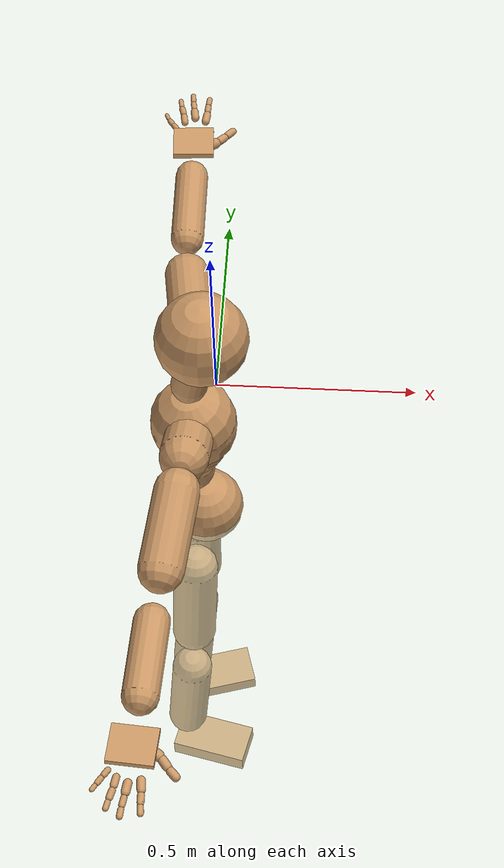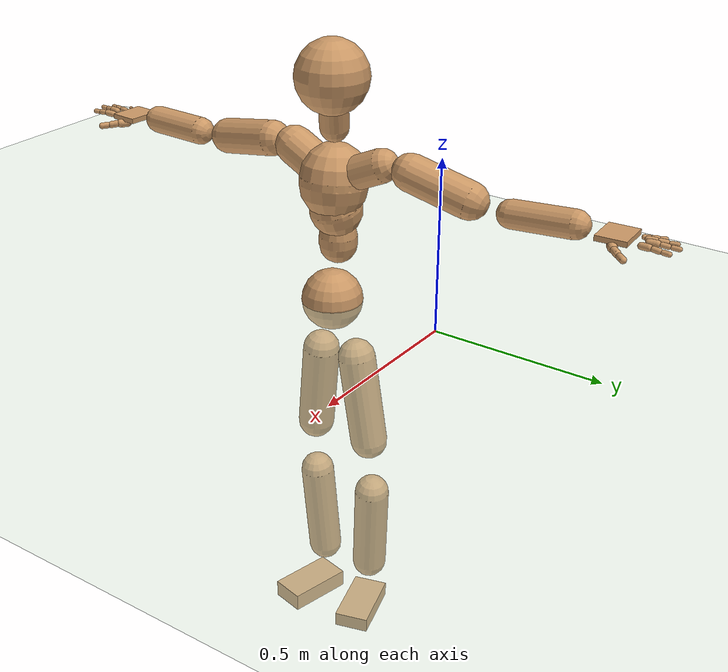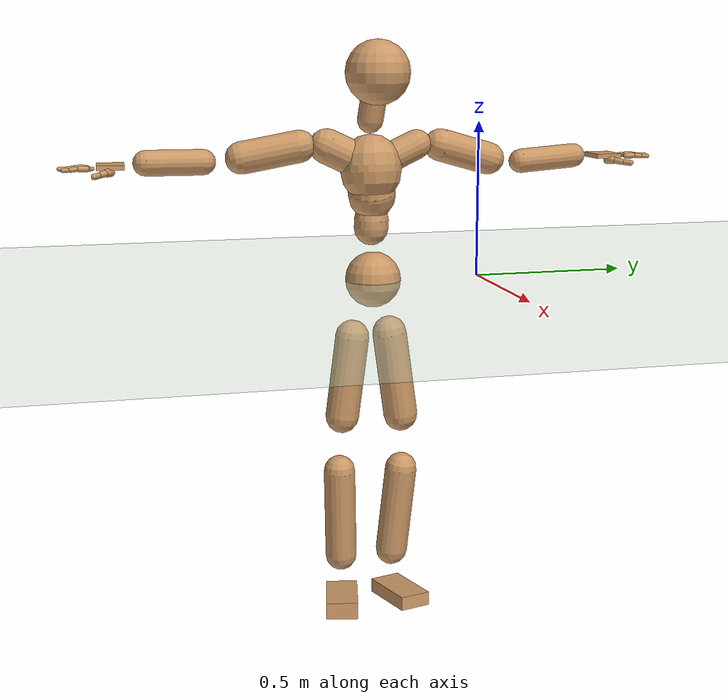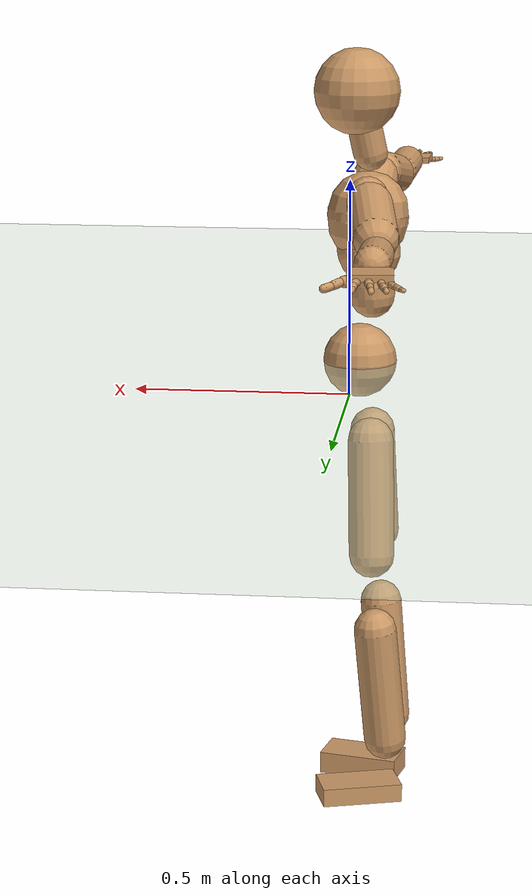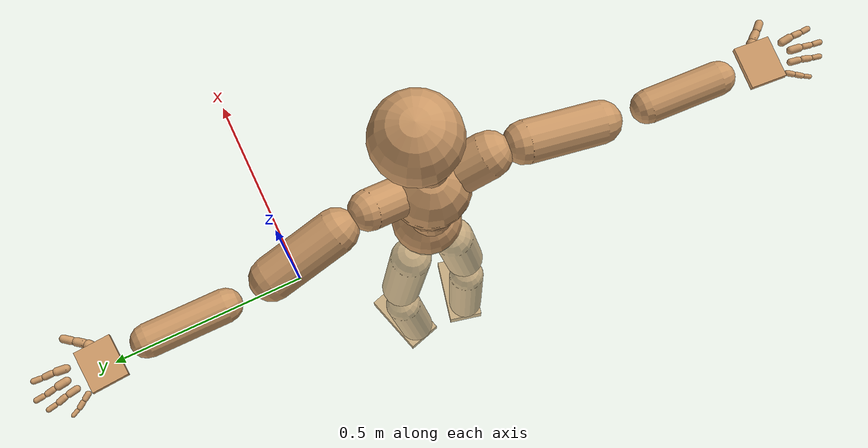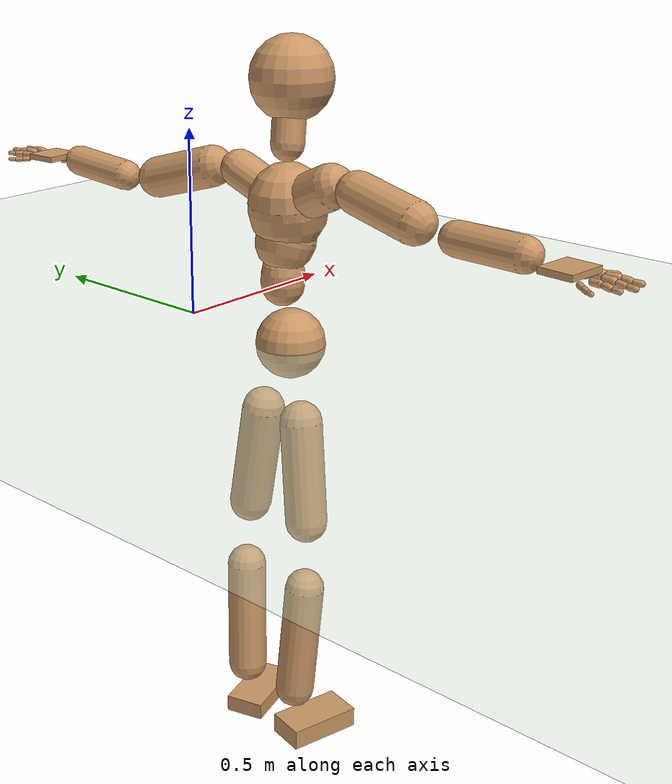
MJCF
<mujoco model="humanoid">
  <compiler coordinate="local" angle="radian"/>
  <default>
    <joint damping="0.0" armature="0.01" stiffness="0.0" limited="true"/>
    <geom conaffinity="1" condim="3" contype="7" margin="0.001" rgba="0.8 0.6 .4 1"/>
  </default>
  <asset>
    <texture type="skybox" builtin="gradient" rgb1=".4 .5 .6" rgb2="0 0 0" width="100" height="100"/>
    <texture builtin="flat" height="1278" mark="cross" markrgb="1 1 1" name="texgeom" random="0.01" rgb1="0.8 0.6 0.4" rgb2="0.8 0.6 0.4" type="cube" width="127"/>
    <texture builtin="checker" height="100" name="texplane" rgb1="0 0 0" rgb2="0.8 0.8 0.8" type="2d" width="100"/>
    <material name="MatPlane" reflectance="0.5" shininess="1" specular="1" texrepeat="60 60" texture="texplane"/>
    <material name="geom" texture="texgeom" texuniform="true"/>
  </asset>
  <worldbody>
    <light cutoff="100" diffuse="1 1 1" dir="-0 0 -1.3" directional="true" exponent="1" pos="0 0 1.3" specular=".1 .1 .1"/>
    <geom conaffinity="1" condim="3" name="floor" pos="0 0 0" rgba="0.8 0.9 0.8 1" size="100 100 .2" type="plane" material="MatPlane"/>
    <body name="Pelvis" pos="0.0006 -0.3533 0.0005">
      <freejoint name="Pelvis"/>
      <geom type="sphere" contype="1" conaffinity="1" density="500" size="0.0901" pos="0.0000 0.0000 0.0000" name="Pelvis"/>
      <body name="L_Hip" pos="-0.0297 0.0504 -0.0924">
        <joint name="L_Hip_x" type="hinge" pos="0 0 0" axis="1 0 0" stiffness="800" damping="80" armature="0.02" range="-180.0000 180.0000"/>
        <joint name="L_Hip_y" type="hinge" pos="0 0 0" axis="0 1 0" stiffness="800" damping="80" armature="0.02" range="-180.0000 180.0000"/>
        <joint name="L_Hip_z" type="hinge" pos="0 0 0" axis="0 0 1" stiffness="800" damping="80" armature="0.02" range="-180.0000 180.0000"/>
        <geom type="capsule" contype="1" conaffinity="1" density="500" fromto="-0.0025 0.0138 -0.0938 -0.0101 0.0550 -0.3752" size="0.0557" name="L_Hip"/>
        <body name="L_Knee" pos="-0.0126 0.0688 -0.4689">
          <joint name="L_Knee_x" type="hinge" pos="0 0 0" axis="1 0 0" stiffness="800" damping="80" armature="0.02" range="-180.0000 180.0000"/>
          <joint name="L_Knee_y" type="hinge" pos="0 0 0" axis="0 1 0" stiffness="800" damping="80" armature="0.02" range="-180.0000 180.0000"/>
          <joint name="L_Knee_z" type="hinge" pos="0 0 0" axis="0 0 1" stiffness="800" damping="80" armature="0.02" range="-180.0000 180.0000"/>
          <geom type="capsule" contype="1" conaffinity="1" density="500" fromto="-0.0085 -0.0084 -0.0982 -0.0341 -0.0336 -0.3929" size="0.0527" name="L_Knee"/>
          <body name="L_Ankle" pos="-0.0426 -0.042 -0.4911">
            <joint name="L_Ankle_x" type="hinge" pos="0 0 0" axis="1 0 0" stiffness="800" damping="80" armature="0.02" range="-180.0000 180.0000"/>
            <joint name="L_Ankle_y" type="hinge" pos="0 0 0" axis="0 1 0" stiffness="800" damping="80" armature="0.02" range="-180.0000 180.0000"/>
            <joint name="L_Ankle_z" type="hinge" pos="0 0 0" axis="0 0 1" stiffness="800" damping="80" armature="0.02" range="-180.0000 180.0000"/>
            <geom type="box" contype="1" conaffinity="1" density="500" pos="0.0728 0.0212 -0.0355" size="0.0998 0.0525 0.0227" quat="0.9900 0.0000 0.0000 0.1409" name="L_Ankle"/>
            <body name="L_Toe" pos="0.1456 0.0423 -0.071">
              <joint name="L_Toe_x" type="hinge" pos="0 0 0" axis="1 0 0" stiffness="500" damping="50" armature="0.02" range="-180.0000 180.0000"/>
              <joint name="L_Toe_y" type="hinge" pos="0 0 0" axis="0 1 0" stiffness="500" damping="50" armature="0.02" range="-180.0000 180.0000"/>
              <joint name="L_Toe_z" type="hinge" pos="0 0 0" axis="0 0 1" stiffness="500" damping="50" armature="0.02" range="-180.0000 180.0000"/>
              <geom type="box" contype="1" conaffinity="1" density="500" pos="0.0000 0.0000 0.0346" size="0.001 0.0025 0.0011" quat="0.9894 0.0000 0.0000 0.1453" name="L_Toe"/>
            </body>
          </body>
        </body>
      </body>
      <body name="R_Hip" pos="-0.024 -0.052 -0.1022">
        <joint name="R_Hip_x" type="hinge" pos="0 0 0" axis="1 0 0" stiffness="800" damping="80" armature="0.02" range="-180.0000 180.0000"/>
        <joint name="R_Hip_y" type="hinge" pos="0 0 0" axis="0 1 0" stiffness="800" damping="80" armature="0.02" range="-180.0000 180.0000"/>
        <joint name="R_Hip_z" type="hinge" pos="0 0 0" axis="0 0 1" stiffness="800" damping="80" armature="0.02" range="-180.0000 180.0000"/>
        <geom type="capsule" contype="1" conaffinity="1" density="500" fromto="-0.0039 -0.0106 -0.0900 -0.0154 -0.0424 -0.3600" size="0.0551" name="R_Hip"/>
        <body name="R_Knee" pos="-0.0193 -0.053 -0.45">
          <joint name="R_Knee_x" type="hinge" pos="0 0 0" axis="1 0 0" stiffness="800" damping="80" armature="0.02" range="-180.0000 180.0000"/>
          <joint name="R_Knee_y" type="hinge" pos="0 0 0" axis="0 1 0" stiffness="800" damping="80" armature="0.02" range="-180.0000 180.0000"/>
          <joint name="R_Knee_z" type="hinge" pos="0 0 0" axis="0 0 1" stiffness="800" damping="80" armature="0.02" range="-180.0000 180.0000"/>
          <geom type="capsule" contype="1" conaffinity="1" density="500" fromto="-0.0081 0.0034 -0.1016 -0.0325 0.0135 -0.4066" size="0.0519" name="R_Knee"/>
          <body name="R_Ankle" pos="-0.0406 0.0168 -0.5082">
            <joint name="R_Ankle_x" type="hinge" pos="0 0 0" axis="1 0 0" stiffness="800" damping="80" armature="0.02" range="-180.0000 180.0000"/>
            <joint name="R_Ankle_y" type="hinge" pos="0 0 0" axis="0 1 0" stiffness="800" damping="80" armature="0.02" range="-180.0000 180.0000"/>
            <joint name="R_Ankle_z" type="hinge" pos="0 0 0" axis="0 0 1" stiffness="800" damping="80" armature="0.02" range="-180.0000 180.0000"/>
            <geom type="box" contype="1" conaffinity="1" density="500" pos="0.0760 -0.0173 -0.0348" size="0.0998 0.0525 0.0277" quat="0.9938 0.0000 0.0000 -0.1114" name="R_Ankle"/>
            <body name="R_Toe" pos="0.152 -0.0345 -0.0696">
              <joint name="R_Toe_x" type="hinge" pos="0 0 0" axis="1 0 0" stiffness="500" damping="50" armature="0.02" range="-180.0000 180.0000"/>
              <joint name="R_Toe_y" type="hinge" pos="0 0 0" axis="0 1 0" stiffness="500" damping="50" armature="0.02" range="-180.0000 180.0000"/>
              <joint name="R_Toe_z" type="hinge" pos="0 0 0" axis="0 0 1" stiffness="500" damping="50" armature="0.02" range="-180.0000 180.0000"/>
              <geom type="box" contype="1" conaffinity="1" density="500" pos="0.0000 0.0000 0.0290" size="0.001 0.0025 0.0011" quat="0.9946 0.0000 0.0000 -0.1039" name="R_Toe"/>
            </body>
          </body>
        </body>
      </body>
      <body name="Torso" pos="-0.0302 -0.0004 0.1069">
        <joint name="Torso_x" type="hinge" pos="0 0 0" axis="1 0 0" stiffness="1000" damping="100" armature="0.02" range="-180.0000 180.0000"/>
        <joint name="Torso_y" type="hinge" pos="0 0 0" axis="0 1 0" stiffness="1000" damping="100" armature="0.02" range="-180.0000 180.0000"/>
        <joint name="Torso_z" type="hinge" pos="0 0 0" axis="0 0 1" stiffness="1000" damping="100" armature="0.02" range="-180.0000 180.0000"/>
        <geom type="capsule" contype="1" conaffinity="1" density="500" fromto="0.0026 0.0022 0.0843 0.0017 0.0015 0.0562" size="0.0554" name="Torso"/>
        <body name="Spine" pos="0.0043 0.0037 0.1406">
          <joint name="Spine_x" type="hinge" pos="0 0 0" axis="1 0 0" stiffness="1000" damping="100" armature="0.02" range="-180.0000 180.0000"/>
          <joint name="Spine_y" type="hinge" pos="0 0 0" axis="0 1 0" stiffness="1000" damping="100" armature="0.02" range="-180.0000 180.0000"/>
          <joint name="Spine_z" type="hinge" pos="0 0 0" axis="0 0 1" stiffness="1000" damping="100" armature="0.02" range="-180.0000 180.0000"/>
          <geom type="capsule" contype="1" conaffinity="1" density="500" fromto="0.0088 -0.0032 0.0334 0.0058 -0.0021 0.0223" size="0.0766" name="Spine"/>
          <body name="Chest" pos="0.0146 -0.0053 0.0557">
            <joint name="Chest_x" type="hinge" pos="0 0 0" axis="1 0 0" stiffness="1000" damping="100" armature="0.02" range="-180.0000 180.0000"/>
            <joint name="Chest_y" type="hinge" pos="0 0 0" axis="0 1 0" stiffness="1000" damping="100" armature="0.02" range="-180.0000 180.0000"/>
            <joint name="Chest_z" type="hinge" pos="0 0 0" axis="0 0 1" stiffness="1000" damping="100" armature="0.02" range="-180.0000 180.0000"/>
            <geom type="capsule" contype="1" conaffinity="1" density="500" fromto="-0.0058 -0.0010 0.0645 -0.0038 -0.0007 0.0430" size="0.0987" name="Chest"/>
            <body name="Neck" pos="-0.0171 -0.0064 0.1682">
              <joint name="Neck_x" type="hinge" pos="0 0 0" axis="1 0 0" stiffness="500" damping="50" armature="0.02" range="-180.0000 180.0000"/>
              <joint name="Neck_y" type="hinge" pos="0 0 0" axis="0 1 0" stiffness="500" damping="50" armature="0.02" range="-180.0000 180.0000"/>
              <joint name="Neck_z" type="hinge" pos="0 0 0" axis="0 0 1" stiffness="500" damping="50" armature="0.02" range="-180.0000 180.0000"/>
              <geom type="capsule" contype="1" conaffinity="1" density="500" fromto="0.0079 0.0041 0.0376 0.0317 0.0165 0.1503" size="0.0416" name="Neck"/>
              <body name="Head" pos="0.0396 0.0206 0.1879">
                <joint name="Head_x" type="hinge" pos="0 0 0" axis="1 0 0" stiffness="500" damping="50" armature="0.02" range="-180.0000 180.0000"/>
                <joint name="Head_y" type="hinge" pos="0 0 0" axis="0 1 0" stiffness="500" damping="50" armature="0.02" range="-180.0000 180.0000"/>
                <joint name="Head_z" type="hinge" pos="0 0 0" axis="0 0 1" stiffness="500" damping="50" armature="0.02" range="-180.0000 180.0000"/>
                <geom type="sphere" contype="1" conaffinity="1" density="500" size="0.1041" pos="0.0000 0.0000 0.0000" name="Head"/>
              </body>
            </body>
            <body name="L_Thorax" pos="-0.0035 0.042 0.0771">
              <joint name="L_Thorax_x" type="hinge" pos="0 0 0" axis="1 0 0" stiffness="500" damping="50" armature="0.02" range="-180.0000 180.0000"/>
              <joint name="L_Thorax_y" type="hinge" pos="0 0 0" axis="0 1 0" stiffness="500" damping="50" armature="0.02" range="-180.0000 180.0000"/>
              <joint name="L_Thorax_z" type="hinge" pos="0 0 0" axis="0 0 1" stiffness="500" damping="50" armature="0.02" range="-180.0000 180.0000"/>
              <geom type="capsule" contype="1" conaffinity="1" density="500" fromto="-0.0028 0.0274 0.0122 -0.0111 0.1097 0.0487" size="0.0482" name="L_Thorax"/>
              <body name="L_Shoulder" pos="-0.0139 0.1372 0.0609">
                <joint name="L_Shoulder_x" type="hinge" pos="0 0 0" axis="1 0 0" stiffness="500" damping="50" armature="0.02" range="-180.0000 180.0000"/>
                <joint name="L_Shoulder_y" type="hinge" pos="0 0 0" axis="0 1 0" stiffness="500" damping="50" armature="0.02" range="-180.0000 180.0000"/>
                <joint name="L_Shoulder_z" type="hinge" pos="0 0 0" axis="0 0 1" stiffness="500" damping="50" armature="0.02" range="-180.0000 180.0000"/>
                <geom type="capsule" contype="1" conaffinity="1" density="500" fromto="-0.0085 0.0571 -0.0166 -0.0339 0.2286 -0.0663" size="0.0528" name="L_Shoulder"/>
                <body name="L_Elbow" pos="-0.0424 0.2857 -0.0829">
                  <joint name="L_Elbow_x" type="hinge" pos="0 0 0" axis="1 0 0" stiffness="500" damping="50" armature="0.02" range="-720.0000 720.0000"/>
                  <joint name="L_Elbow_y" type="hinge" pos="0 0 0" axis="0 1 0" stiffness="500" damping="50" armature="0.02" range="-720.0000 720.0000"/>
                  <joint name="L_Elbow_z" type="hinge" pos="0 0 0" axis="0 0 1" stiffness="500" damping="50" armature="0.02" range="-720.0000 720.0000"/>
                  <geom type="capsule" contype="1" conaffinity="1" density="500" fromto="-0.0009 0.0612 0.0046 -0.0036 0.2447 0.0183" size="0.0396" name="L_Elbow"/>
                  <body name="L_Wrist" pos="-0.0045 0.3059 0.0229">
                    <joint name="L_Wrist_x" type="hinge" pos="0 0 0" axis="1 0 0" stiffness="300" damping="30" armature="0.02" range="-180.0000 180.0000"/>
                    <joint name="L_Wrist_y" type="hinge" pos="0 0 0" axis="0 1 0" stiffness="300" damping="30" armature="0.02" range="-180.0000 180.0000"/>
                    <joint name="L_Wrist_z" type="hinge" pos="0 0 0" axis="0 0 1" stiffness="300" damping="30" armature="0.02" range="-180.0000 180.0000"/>
                    <geom type="box" contype="1" conaffinity="1" density="500" pos="-0.0034 0.0501 -0.0062" size="0.0431 0.0497 0.0076" quat="0.7305 0.0000 0.0000 -0.6829" name="L_Wrist"/>
                    <body name="L_Index1" pos="0.0202 0.1169 -0.0093">
                      <joint name="L_Index1_x" type="hinge" pos="0 0 0" axis="1 0 0" stiffness="100" damping="10" armature="0.02" range="-180.0000 180.0000"/>
                      <joint name="L_Index1_y" type="hinge" pos="0 0 0" axis="0 1 0" stiffness="100" damping="10" armature="0.02" range="-180.0000 180.0000"/>
                      <joint name="L_Index1_z" type="hinge" pos="0 0 0" axis="0 0 1" stiffness="100" damping="10" armature="0.02" range="-180.0000 180.0000"/>
                      <geom type="capsule" contype="1" conaffinity="1" density="500" fromto="0.0007 0.0071 0.0003 0.0030 0.0282 0.0013" size="0.0095" name="L_Index1"/>
                      <body name="L_Index2" pos="0.0037 0.0353 0.0016">
                        <joint name="L_Index2_x" type="hinge" pos="0 0 0" axis="1 0 0" stiffness="100" damping="10" armature="0.02" range="-180.0000 180.0000"/>
                        <joint name="L_Index2_y" type="hinge" pos="0 0 0" axis="0 1 0" stiffness="100" damping="10" armature="0.02" range="-180.0000 180.0000"/>
                        <joint name="L_Index2_z" type="hinge" pos="0 0 0" axis="0 0 1" stiffness="100" damping="10" armature="0.02" range="-180.0000 180.0000"/>
                        <geom type="capsule" contype="1" conaffinity="1" density="500" fromto="0.0000 0.0050 -0.0005 0.0001 0.0200 -0.0022" size="0.0079" name="L_Index2"/>
                        <body name="L_Index3" pos="0.0001 0.025 -0.0027">
                          <joint name="L_Index3_x" type="hinge" pos="0 0 0" axis="1 0 0" stiffness="100" damping="10" armature="0.02" range="-180.0000 180.0000"/>
                          <joint name="L_Index3_y" type="hinge" pos="0 0 0" axis="0 1 0" stiffness="100" damping="10" armature="0.02" range="-180.0000 180.0000"/>
                          <joint name="L_Index3_z" type="hinge" pos="0 0 0" axis="0 0 1" stiffness="100" damping="10" armature="0.02" range="-180.0000 180.0000"/>
                          <geom type="capsule" contype="1" conaffinity="1" density="500" fromto="0.0004 0.0054 -0.0001 0.0017 0.0216 -0.0006" size="0.0069" name="L_Index3"/>
                        </body>
                      </body>
                    </body>
                    <body name="L_Middle1" pos="-0.0047 0.1257 -0.0069">
                      <joint name="L_Middle1_x" type="hinge" pos="0 0 0" axis="1 0 0" stiffness="100" damping="10" armature="0.02" range="-180.0000 180.0000"/>
                      <joint name="L_Middle1_y" type="hinge" pos="0 0 0" axis="0 1 0" stiffness="100" damping="10" armature="0.02" range="-180.0000 180.0000"/>
                      <joint name="L_Middle1_z" type="hinge" pos="0 0 0" axis="0 0 1" stiffness="100" damping="10" armature="0.02" range="-180.0000 180.0000"/>
                      <geom type="capsule" contype="1" conaffinity="1" density="500" fromto="-0.0009 0.0067 0.0000 -0.0037 0.0269 0.0001" size="0.0096" name="L_Middle1"/>
                      <body name="L_Middle2" pos="-0.0047 0.0337 0.0001">
                        <joint name="L_Middle2_x" type="hinge" pos="0 0 0" axis="1 0 0" stiffness="100" damping="10" armature="0.02" range="-180.0000 180.0000"/>
                        <joint name="L_Middle2_y" type="hinge" pos="0 0 0" axis="0 1 0" stiffness="100" damping="10" armature="0.02" range="-180.0000 180.0000"/>
                        <joint name="L_Middle2_z" type="hinge" pos="0 0 0" axis="0 0 1" stiffness="100" damping="10" armature="0.02" range="-180.0000 180.0000"/>
                        <geom type="capsule" contype="1" conaffinity="1" density="500" fromto="-0.0009 0.0052 -0.0005 -0.0036 0.0208 -0.0022" size="0.0072" name="L_Middle2"/>
                        <body name="L_Middle3" pos="-0.0045 0.026 -0.0027">
                          <joint name="L_Middle3_x" type="hinge" pos="0 0 0" axis="1 0 0" stiffness="100" damping="10" armature="0.02" range="-180.0000 180.0000"/>
                          <joint name="L_Middle3_y" type="hinge" pos="0 0 0" axis="0 1 0" stiffness="100" damping="10" armature="0.02" range="-180.0000 180.0000"/>
                          <joint name="L_Middle3_z" type="hinge" pos="0 0 0" axis="0 0 1" stiffness="100" damping="10" armature="0.02" range="-180.0000 180.0000"/>
                          <geom type="capsule" contype="1" conaffinity="1" density="500" fromto="-0.0005 0.0056 -0.0001 -0.0020 0.0224 -0.0006" size="0.0066" name="L_Middle3"/>
                        </body>
                      </body>
                    </body>
                    <body name="L_Pinky1" pos="-0.0473 0.0982 -0.0153">
                      <joint name="L_Pinky1_x" type="hinge" pos="0 0 0" axis="1 0 0" stiffness="100" damping="10" armature="0.02" range="-180.0000 180.0000"/>
                      <joint name="L_Pinky1_y" type="hinge" pos="0 0 0" axis="0 1 0" stiffness="100" damping="10" armature="0.02" range="-180.0000 180.0000"/>
                      <joint name="L_Pinky1_z" type="hinge" pos="0 0 0" axis="0 0 1" stiffness="100" damping="10" armature="0.02" range="-180.0000 180.0000"/>
                      <geom type="capsule" contype="1" conaffinity="1" density="500" fromto="-0.0024 0.0035 -0.0003 -0.0098 0.0141 -0.0014" size="0.0069" name="L_Pinky1"/>
                      <body name="L_Pinky2" pos="-0.0122 0.0176 -0.0017">
                        <joint name="L_Pinky2_x" type="hinge" pos="0 0 0" axis="1 0 0" stiffness="100" damping="10" armature="0.02" range="-180.0000 180.0000"/>
                        <joint name="L_Pinky2_y" type="hinge" pos="0 0 0" axis="0 1 0" stiffness="100" damping="10" armature="0.02" range="-180.0000 180.0000"/>
                        <joint name="L_Pinky2_z" type="hinge" pos="0 0 0" axis="0 0 1" stiffness="100" damping="10" armature="0.02" range="-180.0000 180.0000"/>
                        <geom type="capsule" contype="1" conaffinity="1" density="500" fromto="-0.0023 0.0034 -0.0004 -0.0093 0.0138 -0.0015" size="0.0066" name="L_Pinky2"/>
                        <body name="L_Pinky3" pos="-0.0116 0.0172 -0.0018">
                          <joint name="L_Pinky3_x" type="hinge" pos="0 0 0" axis="1 0 0" stiffness="100" damping="10" armature="0.02" range="-180.0000 180.0000"/>
                          <joint name="L_Pinky3_y" type="hinge" pos="0 0 0" axis="0 1 0" stiffness="100" damping="10" armature="0.02" range="-180.0000 180.0000"/>
                          <joint name="L_Pinky3_z" type="hinge" pos="0 0 0" axis="0 0 1" stiffness="100" damping="10" armature="0.02" range="-180.0000 180.0000"/>
                          <geom type="capsule" contype="1" conaffinity="1" density="500" fromto="-0.0019 0.0038 0.0000 -0.0077 0.0154 0.0001" size="0.0051" name="L_Pinky3"/>
                        </body>
                      </body>
                    </body>
                    <body name="L_Ring1" pos="-0.0295 0.1128 -0.01">
                      <joint name="L_Ring1_x" type="hinge" pos="0 0 0" axis="1 0 0" stiffness="100" damping="10" armature="0.02" range="-180.0000 180.0000"/>
                      <joint name="L_Ring1_y" type="hinge" pos="0 0 0" axis="0 1 0" stiffness="100" damping="10" armature="0.02" range="-180.0000 180.0000"/>
                      <joint name="L_Ring1_z" type="hinge" pos="0 0 0" axis="0 0 1" stiffness="100" damping="10" armature="0.02" range="-180.0000 180.0000"/>
                      <geom type="capsule" contype="1" conaffinity="1" density="500" fromto="-0.0010 0.0062 0.0001 -0.0042 0.0249 0.0003" size="0.0082" name="L_Ring1"/>
                      <body name="L_Ring2" pos="-0.0052 0.0311 0.0004">
                        <joint name="L_Ring2_x" type="hinge" pos="0 0 0" axis="1 0 0" stiffness="100" damping="10" armature="0.02" range="-180.0000 180.0000"/>
                        <joint name="L_Ring2_y" type="hinge" pos="0 0 0" axis="0 1 0" stiffness="100" damping="10" armature="0.02" range="-180.0000 180.0000"/>
                        <joint name="L_Ring2_z" type="hinge" pos="0 0 0" axis="0 0 1" stiffness="100" damping="10" armature="0.02" range="-180.0000 180.0000"/>
                        <geom type="capsule" contype="1" conaffinity="1" density="500" fromto="-0.0014 0.0051 -0.0005 -0.0057 0.0202 -0.0018" size="0.0077" name="L_Ring2"/>
                        <body name="L_Ring3" pos="-0.0072 0.0253 -0.0023">
                          <joint name="L_Ring3_x" type="hinge" pos="0 0 0" axis="1 0 0" stiffness="100" damping="10" armature="0.02" range="-180.0000 180.0000"/>
                          <joint name="L_Ring3_y" type="hinge" pos="0 0 0" axis="0 1 0" stiffness="100" damping="10" armature="0.02" range="-180.0000 180.0000"/>
                          <joint name="L_Ring3_z" type="hinge" pos="0 0 0" axis="0 0 1" stiffness="100" damping="10" armature="0.02" range="-180.0000 180.0000"/>
                          <geom type="capsule" contype="1" conaffinity="1" density="500" fromto="-0.0010 0.0055 -0.0001 -0.0041 0.0218 -0.0002" size="0.0061" name="L_Ring3"/>
                        </body>
                      </body>
                    </body>
                    <body name="L_Thumb1" pos="0.0275 0.0478 -0.0203">
                      <joint name="L_Thumb1_x" type="hinge" pos="0 0 0" axis="1 0 0" stiffness="100" damping="10" armature="0.02" range="-180.0000 180.0000"/>
                      <joint name="L_Thumb1_y" type="hinge" pos="0 0 0" axis="0 1 0" stiffness="100" damping="10" armature="0.02" range="-180.0000 180.0000"/>
                      <joint name="L_Thumb1_z" type="hinge" pos="0 0 0" axis="0 0 1" stiffness="100" damping="10" armature="0.02" range="-180.0000 180.0000"/>
                      <geom type="capsule" contype="1" conaffinity="1" density="500" fromto="0.0057 0.0038 0.0002 0.0226 0.0151 0.0010" size="0.013" name="L_Thumb1"/>
                      <body name="L_Thumb2" pos="0.0283 0.0188 0.0012">
                        <joint name="L_Thumb2_x" type="hinge" pos="0 0 0" axis="1 0 0" stiffness="100" damping="10" armature="0.02" range="-180.0000 180.0000"/>
                        <joint name="L_Thumb2_y" type="hinge" pos="0 0 0" axis="0 1 0" stiffness="100" damping="10" armature="0.02" range="-180.0000 180.0000"/>
                        <joint name="L_Thumb2_z" type="hinge" pos="0 0 0" axis="0 0 1" stiffness="100" damping="10" armature="0.02" range="-180.0000 180.0000"/>
                        <geom type="capsule" contype="1" conaffinity="1" density="500" fromto="0.0036 0.0046 -0.0009 0.0143 0.0183 -0.0037" size="0.0102" name="L_Thumb2"/>
                        <body name="L_Thumb3" pos="0.0179 0.0229 -0.0047">
                          <joint name="L_Thumb3_x" type="hinge" pos="0 0 0" axis="1 0 0" stiffness="100" damping="10" armature="0.02" range="-180.0000 180.0000"/>
                          <joint name="L_Thumb3_y" type="hinge" pos="0 0 0" axis="0 1 0" stiffness="100" damping="10" armature="0.02" range="-180.0000 180.0000"/>
                          <joint name="L_Thumb3_z" type="hinge" pos="0 0 0" axis="0 0 1" stiffness="100" damping="10" armature="0.02" range="-180.0000 180.0000"/>
                          <geom type="capsule" contype="1" conaffinity="1" density="500" fromto="0.0040 0.0050 -0.0005 0.0159 0.0199 -0.0021" size="0.0094" name="L_Thumb3"/>
                        </body>
                      </body>
                    </body>
                  </body>
                </body>
              </body>
            </body>
            <body name="R_Thorax" pos="-0.0082 -0.0406 0.077">
              <joint name="R_Thorax_x" type="hinge" pos="0 0 0" axis="1 0 0" stiffness="500" damping="50" armature="0.02" range="-180.0000 180.0000"/>
              <joint name="R_Thorax_y" type="hinge" pos="0 0 0" axis="0 1 0" stiffness="500" damping="50" armature="0.02" range="-180.0000 180.0000"/>
              <joint name="R_Thorax_z" type="hinge" pos="0 0 0" axis="0 0 1" stiffness="500" damping="50" armature="0.02" range="-180.0000 180.0000"/>
              <geom type="capsule" contype="1" conaffinity="1" density="500" fromto="-0.0012 -0.0257 0.0123 -0.0048 -0.1027 0.0491" size="0.0561" name="R_Thorax"/>
              <body name="R_Shoulder" pos="-0.006 -0.1283 0.0614">
                <joint name="R_Shoulder_x" type="hinge" pos="0 0 0" axis="1 0 0" stiffness="500" damping="50" armature="0.02" range="-180.0000 180.0000"/>
                <joint name="R_Shoulder_y" type="hinge" pos="0 0 0" axis="0 1 0" stiffness="500" damping="50" armature="0.02" range="-180.0000 180.0000"/>
                <joint name="R_Shoulder_z" type="hinge" pos="0 0 0" axis="0 0 1" stiffness="500" damping="50" armature="0.02" range="-180.0000 180.0000"/>
                <geom type="capsule" contype="1" conaffinity="1" density="500" fromto="-0.0071 -0.0608 -0.0115 -0.0284 -0.2432 -0.0458" size="0.0517" name="R_Shoulder"/>
                <body name="R_Elbow" pos="-0.0355 -0.304 -0.0573">
                  <joint name="R_Elbow_x" type="hinge" pos="0 0 0" axis="1 0 0" stiffness="500" damping="50" armature="0.02" range="-720.0000 720.0000"/>
                  <joint name="R_Elbow_y" type="hinge" pos="0 0 0" axis="0 1 0" stiffness="500" damping="50" armature="0.02" range="-720.0000 720.0000"/>
                  <joint name="R_Elbow_z" type="hinge" pos="0 0 0" axis="0 0 1" stiffness="500" damping="50" armature="0.02" range="-720.0000 720.0000"/>
                  <geom type="capsule" contype="1" conaffinity="1" density="500" fromto="-0.0028 -0.0591 0.0001 -0.0111 -0.2364 0.0003" size="0.0407" name="R_Elbow"/>
                  <body name="R_Wrist" pos="-0.0139 -0.2956 0.0003">
                    <joint name="R_Wrist_x" type="hinge" pos="0 0 0" axis="1 0 0" stiffness="300" damping="30" armature="0.02" range="-180.0000 180.0000"/>
                    <joint name="R_Wrist_y" type="hinge" pos="0 0 0" axis="0 1 0" stiffness="300" damping="30" armature="0.02" range="-180.0000 180.0000"/>
                    <joint name="R_Wrist_z" type="hinge" pos="0 0 0" axis="0 0 1" stiffness="300" damping="30" armature="0.02" range="-180.0000 180.0000"/>
                    <geom type="box" contype="1" conaffinity="1" density="500" pos="-0.0037 -0.0499 -0.0079" size="0.0431 0.0512 0.0077" quat="0.7330 0.0000 0.0000 0.6802" name="R_Wrist"/>
                    <body name="R_Index1" pos="0.0195 -0.1164 -0.0126">
                      <joint name="R_Index1_x" type="hinge" pos="0 0 0" axis="1 0 0" stiffness="100" damping="10" armature="0.02" range="-180.0000 180.0000"/>
                      <joint name="R_Index1_y" type="hinge" pos="0 0 0" axis="0 1 0" stiffness="100" damping="10" armature="0.02" range="-180.0000 180.0000"/>
                      <joint name="R_Index1_z" type="hinge" pos="0 0 0" axis="0 0 1" stiffness="100" damping="10" armature="0.02" range="-180.0000 180.0000"/>
                      <geom type="capsule" contype="1" conaffinity="1" density="500" fromto="0.0007 -0.0071 0.0003 0.0030 -0.0282 0.0013" size="0.0095" name="R_Index1"/>
                      <body name="R_Index2" pos="0.0037 -0.0353 0.0016">
                        <joint name="R_Index2_x" type="hinge" pos="0 0 0" axis="1 0 0" stiffness="100" damping="10" armature="0.02" range="-180.0000 180.0000"/>
                        <joint name="R_Index2_y" type="hinge" pos="0 0 0" axis="0 1 0" stiffness="100" damping="10" armature="0.02" range="-180.0000 180.0000"/>
                        <joint name="R_Index2_z" type="hinge" pos="0 0 0" axis="0 0 1" stiffness="100" damping="10" armature="0.02" range="-180.0000 180.0000"/>
                        <geom type="capsule" contype="1" conaffinity="1" density="500" fromto="0.0000 -0.0050 -0.0005 0.0001 -0.0200 -0.0022" size="0.0079" name="R_Index2"/>
                        <body name="R_Index3" pos="0.0001 -0.025 -0.0027">
                          <joint name="R_Index3_x" type="hinge" pos="0 0 0" axis="1 0 0" stiffness="100" damping="10" armature="0.02" range="-180.0000 180.0000"/>
                          <joint name="R_Index3_y" type="hinge" pos="0 0 0" axis="0 1 0" stiffness="100" damping="10" armature="0.02" range="-180.0000 180.0000"/>
                          <joint name="R_Index3_z" type="hinge" pos="0 0 0" axis="0 0 1" stiffness="100" damping="10" armature="0.02" range="-180.0000 180.0000"/>
                          <geom type="capsule" contype="1" conaffinity="1" density="500" fromto="0.0004 -0.0046 -0.0001 0.0017 -0.0184 -0.0006" size="0.0071" name="R_Index3"/>
                        </body>
                      </body>
                    </body>
                    <body name="R_Middle1" pos="-0.0054 -0.1252 -0.0103">
                      <joint name="R_Middle1_x" type="hinge" pos="0 0 0" axis="1 0 0" stiffness="100" damping="10" armature="0.02" range="-180.0000 180.0000"/>
                      <joint name="R_Middle1_y" type="hinge" pos="0 0 0" axis="0 1 0" stiffness="100" damping="10" armature="0.02" range="-180.0000 180.0000"/>
                      <joint name="R_Middle1_z" type="hinge" pos="0 0 0" axis="0 0 1" stiffness="100" damping="10" armature="0.02" range="-180.0000 180.0000"/>
                      <geom type="capsule" contype="1" conaffinity="1" density="500" fromto="-0.0009 -0.0067 0.0000 -0.0037 -0.0269 0.0001" size="0.0096" name="R_Middle1"/>
                      <body name="R_Middle2" pos="-0.0047 -0.0337 0.0001">
                        <joint name="R_Middle2_x" type="hinge" pos="0 0 0" axis="1 0 0" stiffness="100" damping="10" armature="0.02" range="-180.0000 180.0000"/>
                        <joint name="R_Middle2_y" type="hinge" pos="0 0 0" axis="0 1 0" stiffness="100" damping="10" armature="0.02" range="-180.0000 180.0000"/>
                        <joint name="R_Middle2_z" type="hinge" pos="0 0 0" axis="0 0 1" stiffness="100" damping="10" armature="0.02" range="-180.0000 180.0000"/>
                        <geom type="capsule" contype="1" conaffinity="1" density="500" fromto="-0.0009 -0.0052 -0.0005 -0.0036 -0.0208 -0.0022" size="0.0072" name="R_Middle2"/>
                        <body name="R_Middle3" pos="-0.0045 -0.026 -0.0027">
                          <joint name="R_Middle3_x" type="hinge" pos="0 0 0" axis="1 0 0" stiffness="100" damping="10" armature="0.02" range="-180.0000 180.0000"/>
                          <joint name="R_Middle3_y" type="hinge" pos="0 0 0" axis="0 1 0" stiffness="100" damping="10" armature="0.02" range="-180.0000 180.0000"/>
                          <joint name="R_Middle3_z" type="hinge" pos="0 0 0" axis="0 0 1" stiffness="100" damping="10" armature="0.02" range="-180.0000 180.0000"/>
                          <geom type="capsule" contype="1" conaffinity="1" density="500" fromto="-0.0005 -0.0048 -0.0001 -0.0020 -0.0192 -0.0006" size="0.0069" name="R_Middle3"/>
                        </body>
                      </body>
                    </body>
                    <body name="R_Pinky1" pos="-0.048 -0.0978 -0.0187">
                      <joint name="R_Pinky1_x" type="hinge" pos="0 0 0" axis="1 0 0" stiffness="100" damping="10" armature="0.02" range="-180.0000 180.0000"/>
                      <joint name="R_Pinky1_y" type="hinge" pos="0 0 0" axis="0 1 0" stiffness="100" damping="10" armature="0.02" range="-180.0000 180.0000"/>
                      <joint name="R_Pinky1_z" type="hinge" pos="0 0 0" axis="0 0 1" stiffness="100" damping="10" armature="0.02" range="-180.0000 180.0000"/>
                      <geom type="capsule" contype="1" conaffinity="1" density="500" fromto="-0.0024 -0.0035 -0.0003 -0.0098 -0.0141 -0.0014" size="0.0069" name="R_Pinky1"/>
                      <body name="R_Pinky2" pos="-0.0122 -0.0176 -0.0017">
                        <joint name="R_Pinky2_x" type="hinge" pos="0 0 0" axis="1 0 0" stiffness="100" damping="10" armature="0.02" range="-180.0000 180.0000"/>
                        <joint name="R_Pinky2_y" type="hinge" pos="0 0 0" axis="0 1 0" stiffness="100" damping="10" armature="0.02" range="-180.0000 180.0000"/>
                        <joint name="R_Pinky2_z" type="hinge" pos="0 0 0" axis="0 0 1" stiffness="100" damping="10" armature="0.02" range="-180.0000 180.0000"/>
                        <geom type="capsule" contype="1" conaffinity="1" density="500" fromto="-0.0023 -0.0034 -0.0004 -0.0093 -0.0138 -0.0015" size="0.0066" name="R_Pinky2"/>
                        <body name="R_Pinky3" pos="-0.0116 -0.0172 -0.0018">
                          <joint name="R_Pinky3_x" type="hinge" pos="0 0 0" axis="1 0 0" stiffness="100" damping="10" armature="0.02" range="-180.0000 180.0000"/>
                          <joint name="R_Pinky3_y" type="hinge" pos="0 0 0" axis="0 1 0" stiffness="100" damping="10" armature="0.02" range="-180.0000 180.0000"/>
                          <joint name="R_Pinky3_z" type="hinge" pos="0 0 0" axis="0 0 1" stiffness="100" damping="10" armature="0.02" range="-180.0000 180.0000"/>
                          <geom type="capsule" contype="1" conaffinity="1" density="500" fromto="-0.0019 -0.0030 0.0000 -0.0077 -0.0122 0.0001" size="0.0054" name="R_Pinky3"/>
                        </body>
                      </body>
                    </body>
                    <body name="R_Ring1" pos="-0.0302 -0.1123 -0.0134">
                      <joint name="R_Ring1_x" type="hinge" pos="0 0 0" axis="1 0 0" stiffness="100" damping="10" armature="0.02" range="-180.0000 180.0000"/>
                      <joint name="R_Ring1_y" type="hinge" pos="0 0 0" axis="0 1 0" stiffness="100" damping="10" armature="0.02" range="-180.0000 180.0000"/>
                      <joint name="R_Ring1_z" type="hinge" pos="0 0 0" axis="0 0 1" stiffness="100" damping="10" armature="0.02" range="-180.0000 180.0000"/>
                      <geom type="capsule" contype="1" conaffinity="1" density="500" fromto="-0.0010 -0.0062 0.0001 -0.0042 -0.0249 0.0003" size="0.0082" name="R_Ring1"/>
                      <body name="R_Ring2" pos="-0.0052 -0.0311 0.0004">
                        <joint name="R_Ring2_x" type="hinge" pos="0 0 0" axis="1 0 0" stiffness="100" damping="10" armature="0.02" range="-180.0000 180.0000"/>
                        <joint name="R_Ring2_y" type="hinge" pos="0 0 0" axis="0 1 0" stiffness="100" damping="10" armature="0.02" range="-180.0000 180.0000"/>
                        <joint name="R_Ring2_z" type="hinge" pos="0 0 0" axis="0 0 1" stiffness="100" damping="10" armature="0.02" range="-180.0000 180.0000"/>
                        <geom type="capsule" contype="1" conaffinity="1" density="500" fromto="-0.0014 -0.0051 -0.0005 -0.0057 -0.0202 -0.0018" size="0.0077" name="R_Ring2"/>
                        <body name="R_Ring3" pos="-0.0072 -0.0253 -0.0023">
                          <joint name="R_Ring3_x" type="hinge" pos="0 0 0" axis="1 0 0" stiffness="100" damping="10" armature="0.02" range="-180.0000 180.0000"/>
                          <joint name="R_Ring3_y" type="hinge" pos="0 0 0" axis="0 1 0" stiffness="100" damping="10" armature="0.02" range="-180.0000 180.0000"/>
                          <joint name="R_Ring3_z" type="hinge" pos="0 0 0" axis="0 0 1" stiffness="100" damping="10" armature="0.02" range="-180.0000 180.0000"/>
                          <geom type="capsule" contype="1" conaffinity="1" density="500" fromto="-0.0010 -0.0047 -0.0001 -0.0041 -0.0186 -0.0002" size="0.0064" name="R_Ring3"/>
                        </body>
                      </body>
                    </body>
                    <body name="R_Thumb1" pos="0.0268 -0.0474 -0.0236">
                      <joint name="R_Thumb1_x" type="hinge" pos="0 0 0" axis="1 0 0" stiffness="100" damping="10" armature="0.02" range="-180.0000 180.0000"/>
                      <joint name="R_Thumb1_y" type="hinge" pos="0 0 0" axis="0 1 0" stiffness="100" damping="10" armature="0.02" range="-180.0000 180.0000"/>
                      <joint name="R_Thumb1_z" type="hinge" pos="0 0 0" axis="0 0 1" stiffness="100" damping="10" armature="0.02" range="-180.0000 180.0000"/>
                      <geom type="capsule" contype="1" conaffinity="1" density="500" fromto="0.0057 -0.0038 0.0002 0.0226 -0.0151 0.0010" size="0.013" name="R_Thumb1"/>
                      <body name="R_Thumb2" pos="0.0283 -0.0188 0.0012">
                        <joint name="R_Thumb2_x" type="hinge" pos="0 0 0" axis="1 0 0" stiffness="100" damping="10" armature="0.02" range="-180.0000 180.0000"/>
                        <joint name="R_Thumb2_y" type="hinge" pos="0 0 0" axis="0 1 0" stiffness="100" damping="10" armature="0.02" range="-180.0000 180.0000"/>
                        <joint name="R_Thumb2_z" type="hinge" pos="0 0 0" axis="0 0 1" stiffness="100" damping="10" armature="0.02" range="-180.0000 180.0000"/>
                        <geom type="capsule" contype="1" conaffinity="1" density="500" fromto="0.0036 -0.0046 -0.0009 0.0143 -0.0183 -0.0037" size="0.0102" name="R_Thumb2"/>
                        <body name="R_Thumb3" pos="0.0179 -0.0229 -0.0047">
                          <joint name="R_Thumb3_x" type="hinge" pos="0 0 0" axis="1 0 0" stiffness="100" damping="10" armature="0.02" range="-180.0000 180.0000"/>
                          <joint name="R_Thumb3_y" type="hinge" pos="0 0 0" axis="0 1 0" stiffness="100" damping="10" armature="0.02" range="-180.0000 180.0000"/>
                          <joint name="R_Thumb3_z" type="hinge" pos="0 0 0" axis="0 0 1" stiffness="100" damping="10" armature="0.02" range="-180.0000 180.0000"/>
                          <geom type="capsule" contype="1" conaffinity="1" density="500" fromto="0.0040 -0.0042 -0.0005 0.0159 -0.0167 -0.0021" size="0.0096" name="R_Thumb3"/>
                        </body>
                      </body>
                    </body>
                  </body>
                </body>
              </body>
            </body>
          </body>
        </body>
      </body>
    </body>
  </worldbody>
  <actuator>
    <motor name="L_Hip_x" joint="L_Hip_x" gear="500"/>
    <motor name="L_Hip_y" joint="L_Hip_y" gear="500"/>
    <motor name="L_Hip_z" joint="L_Hip_z" gear="500"/>
    <motor name="L_Knee_x" joint="L_Knee_x" gear="500"/>
    <motor name="L_Knee_y" joint="L_Knee_y" gear="500"/>
    <motor name="L_Knee_z" joint="L_Knee_z" gear="500"/>
    <motor name="L_Ankle_x" joint="L_Ankle_x" gear="500"/>
    <motor name="L_Ankle_y" joint="L_Ankle_y" gear="500"/>
    <motor name="L_Ankle_z" joint="L_Ankle_z" gear="500"/>
    <motor name="L_Toe_x" joint="L_Toe_x" gear="500"/>
    <motor name="L_Toe_y" joint="L_Toe_y" gear="500"/>
    <motor name="L_Toe_z" joint="L_Toe_z" gear="500"/>
    <motor name="R_Hip_x" joint="R_Hip_x" gear="500"/>
    <motor name="R_Hip_y" joint="R_Hip_y" gear="500"/>
    <motor name="R_Hip_z" joint="R_Hip_z" gear="500"/>
    <motor name="R_Knee_x" joint="R_Knee_x" gear="500"/>
    <motor name="R_Knee_y" joint="R_Knee_y" gear="500"/>
    <motor name="R_Knee_z" joint="R_Knee_z" gear="500"/>
    <motor name="R_Ankle_x" joint="R_Ankle_x" gear="500"/>
    <motor name="R_Ankle_y" joint="R_Ankle_y" gear="500"/>
    <motor name="R_Ankle_z" joint="R_Ankle_z" gear="500"/>
    <motor name="R_Toe_x" joint="R_Toe_x" gear="500"/>
    <motor name="R_Toe_y" joint="R_Toe_y" gear="500"/>
    <motor name="R_Toe_z" joint="R_Toe_z" gear="500"/>
    <motor name="Torso_x" joint="Torso_x" gear="500"/>
    <motor name="Torso_y" joint="Torso_y" gear="500"/>
    <motor name="Torso_z" joint="Torso_z" gear="500"/>
    <motor name="Spine_x" joint="Spine_x" gear="500"/>
    <motor name="Spine_y" joint="Spine_y" gear="500"/>
    <motor name="Spine_z" joint="Spine_z" gear="500"/>
    <motor name="Chest_x" joint="Chest_x" gear="500"/>
    <motor name="Chest_y" joint="Chest_y" gear="500"/>
    <motor name="Chest_z" joint="Chest_z" gear="500"/>
    <motor name="Neck_x" joint="Neck_x" gear="500"/>
    <motor name="Neck_y" joint="Neck_y" gear="500"/>
    <motor name="Neck_z" joint="Neck_z" gear="500"/>
    <motor name="Head_x" joint="Head_x" gear="500"/>
    <motor name="Head_y" joint="Head_y" gear="500"/>
    <motor name="Head_z" joint="Head_z" gear="500"/>
    <motor name="L_Thorax_x" joint="L_Thorax_x" gear="500"/>
    <motor name="L_Thorax_y" joint="L_Thorax_y" gear="500"/>
    <motor name="L_Thorax_z" joint="L_Thorax_z" gear="500"/>
    <motor name="L_Shoulder_x" joint="L_Shoulder_x" gear="500"/>
    <motor name="L_Shoulder_y" joint="L_Shoulder_y" gear="500"/>
    <motor name="L_Shoulder_z" joint="L_Shoulder_z" gear="500"/>
    <motor name="L_Elbow_x" joint="L_Elbow_x" gear="500"/>
    <motor name="L_Elbow_y" joint="L_Elbow_y" gear="500"/>
    <motor name="L_Elbow_z" joint="L_Elbow_z" gear="500"/>
    <motor name="L_Wrist_x" joint="L_Wrist_x" gear="500"/>
    <motor name="L_Wrist_y" joint="L_Wrist_y" gear="500"/>
    <motor name="L_Wrist_z" joint="L_Wrist_z" gear="500"/>
    <motor name="L_Index1_x" joint="L_Index1_x" gear="500"/>
    <motor name="L_Index1_y" joint="L_Index1_y" gear="500"/>
    <motor name="L_Index1_z" joint="L_Index1_z" gear="500"/>
    <motor name="L_Index2_x" joint="L_Index2_x" gear="500"/>
    <motor name="L_Index2_y" joint="L_Index2_y" gear="500"/>
    <motor name="L_Index2_z" joint="L_Index2_z" gear="500"/>
    <motor name="L_Index3_x" joint="L_Index3_x" gear="500"/>
    <motor name="L_Index3_y" joint="L_Index3_y" gear="500"/>
    <motor name="L_Index3_z" joint="L_Index3_z" gear="500"/>
    <motor name="L_Middle1_x" joint="L_Middle1_x" gear="500"/>
    <motor name="L_Middle1_y" joint="L_Middle1_y" gear="500"/>
    <motor name="L_Middle1_z" joint="L_Middle1_z" gear="500"/>
    <motor name="L_Middle2_x" joint="L_Middle2_x" gear="500"/>
    <motor name="L_Middle2_y" joint="L_Middle2_y" gear="500"/>
    <motor name="L_Middle2_z" joint="L_Middle2_z" gear="500"/>
    <motor name="L_Middle3_x" joint="L_Middle3_x" gear="500"/>
    <motor name="L_Middle3_y" joint="L_Middle3_y" gear="500"/>
    <motor name="L_Middle3_z" joint="L_Middle3_z" gear="500"/>
    <motor name="L_Pinky1_x" joint="L_Pinky1_x" gear="500"/>
    <motor name="L_Pinky1_y" joint="L_Pinky1_y" gear="500"/>
    <motor name="L_Pinky1_z" joint="L_Pinky1_z" gear="500"/>
    <motor name="L_Pinky2_x" joint="L_Pinky2_x" gear="500"/>
    <motor name="L_Pinky2_y" joint="L_Pinky2_y" gear="500"/>
    <motor name="L_Pinky2_z" joint="L_Pinky2_z" gear="500"/>
    <motor name="L_Pinky3_x" joint="L_Pinky3_x" gear="500"/>
    <motor name="L_Pinky3_y" joint="L_Pinky3_y" gear="500"/>
    <motor name="L_Pinky3_z" joint="L_Pinky3_z" gear="500"/>
    <motor name="L_Ring1_x" joint="L_Ring1_x" gear="500"/>
    <motor name="L_Ring1_y" joint="L_Ring1_y" gear="500"/>
    <motor name="L_Ring1_z" joint="L_Ring1_z" gear="500"/>
    <motor name="L_Ring2_x" joint="L_Ring2_x" gear="500"/>
    <motor name="L_Ring2_y" joint="L_Ring2_y" gear="500"/>
    <motor name="L_Ring2_z" joint="L_Ring2_z" gear="500"/>
    <motor name="L_Ring3_x" joint="L_Ring3_x" gear="500"/>
    <motor name="L_Ring3_y" joint="L_Ring3_y" gear="500"/>
    <motor name="L_Ring3_z" joint="L_Ring3_z" gear="500"/>
    <motor name="L_Thumb1_x" joint="L_Thumb1_x" gear="500"/>
    <motor name="L_Thumb1_y" joint="L_Thumb1_y" gear="500"/>
    <motor name="L_Thumb1_z" joint="L_Thumb1_z" gear="500"/>
    <motor name="L_Thumb2_x" joint="L_Thumb2_x" gear="500"/>
    <motor name="L_Thumb2_y" joint="L_Thumb2_y" gear="500"/>
    <motor name="L_Thumb2_z" joint="L_Thumb2_z" gear="500"/>
    <motor name="L_Thumb3_x" joint="L_Thumb3_x" gear="500"/>
    <motor name="L_Thumb3_y" joint="L_Thumb3_y" gear="500"/>
    <motor name="L_Thumb3_z" joint="L_Thumb3_z" gear="500"/>
    <motor name="R_Thorax_x" joint="R_Thorax_x" gear="500"/>
    <motor name="R_Thorax_y" joint="R_Thorax_y" gear="500"/>
    <motor name="R_Thorax_z" joint="R_Thorax_z" gear="500"/>
    <motor name="R_Shoulder_x" joint="R_Shoulder_x" gear="500"/>
    <motor name="R_Shoulder_y" joint="R_Shoulder_y" gear="500"/>
    <motor name="R_Shoulder_z" joint="R_Shoulder_z" gear="500"/>
    <motor name="R_Elbow_x" joint="R_Elbow_x" gear="500"/>
    <motor name="R_Elbow_y" joint="R_Elbow_y" gear="500"/>
    <motor name="R_Elbow_z" joint="R_Elbow_z" gear="500"/>
    <motor name="R_Wrist_x" joint="R_Wrist_x" gear="500"/>
    <motor name="R_Wrist_y" joint="R_Wrist_y" gear="500"/>
    <motor name="R_Wrist_z" joint="R_Wrist_z" gear="500"/>
    <motor name="R_Index1_x" joint="R_Index1_x" gear="500"/>
    <motor name="R_Index1_y" joint="R_Index1_y" gear="500"/>
    <motor name="R_Index1_z" joint="R_Index1_z" gear="500"/>
    <motor name="R_Index2_x" joint="R_Index2_x" gear="500"/>
    <motor name="R_Index2_y" joint="R_Index2_y" gear="500"/>
    <motor name="R_Index2_z" joint="R_Index2_z" gear="500"/>
    <motor name="R_Index3_x" joint="R_Index3_x" gear="500"/>
    <motor name="R_Index3_y" joint="R_Index3_y" gear="500"/>
    <motor name="R_Index3_z" joint="R_Index3_z" gear="500"/>
    <motor name="R_Middle1_x" joint="R_Middle1_x" gear="500"/>
    <motor name="R_Middle1_y" joint="R_Middle1_y" gear="500"/>
    <motor name="R_Middle1_z" joint="R_Middle1_z" gear="500"/>
    <motor name="R_Middle2_x" joint="R_Middle2_x" gear="500"/>
    <motor name="R_Middle2_y" joint="R_Middle2_y" gear="500"/>
    <motor name="R_Middle2_z" joint="R_Middle2_z" gear="500"/>
    <motor name="R_Middle3_x" joint="R_Middle3_x" gear="500"/>
    <motor name="R_Middle3_y" joint="R_Middle3_y" gear="500"/>
    <motor name="R_Middle3_z" joint="R_Middle3_z" gear="500"/>
    <motor name="R_Pinky1_x" joint="R_Pinky1_x" gear="500"/>
    <motor name="R_Pinky1_y" joint="R_Pinky1_y" gear="500"/>
    <motor name="R_Pinky1_z" joint="R_Pinky1_z" gear="500"/>
    <motor name="R_Pinky2_x" joint="R_Pinky2_x" gear="500"/>
    <motor name="R_Pinky2_y" joint="R_Pinky2_y" gear="500"/>
    <motor name="R_Pinky2_z" joint="R_Pinky2_z" gear="500"/>
    <motor name="R_Pinky3_x" joint="R_Pinky3_x" gear="500"/>
    <motor name="R_Pinky3_y" joint="R_Pinky3_y" gear="500"/>
    <motor name="R_Pinky3_z" joint="R_Pinky3_z" gear="500"/>
    <motor name="R_Ring1_x" joint="R_Ring1_x" gear="500"/>
    <motor name="R_Ring1_y" joint="R_Ring1_y" gear="500"/>
    <motor name="R_Ring1_z" joint="R_Ring1_z" gear="500"/>
    <motor name="R_Ring2_x" joint="R_Ring2_x" gear="500"/>
    <motor name="R_Ring2_y" joint="R_Ring2_y" gear="500"/>
    <motor name="R_Ring2_z" joint="R_Ring2_z" gear="500"/>
    <motor name="R_Ring3_x" joint="R_Ring3_x" gear="500"/>
    <motor name="R_Ring3_y" joint="R_Ring3_y" gear="500"/>
    <motor name="R_Ring3_z" joint="R_Ring3_z" gear="500"/>
    <motor name="R_Thumb1_x" joint="R_Thumb1_x" gear="500"/>
    <motor name="R_Thumb1_y" joint="R_Thumb1_y" gear="500"/>
    <motor name="R_Thumb1_z" joint="R_Thumb1_z" gear="500"/>
    <motor name="R_Thumb2_x" joint="R_Thumb2_x" gear="500"/>
    <motor name="R_Thumb2_y" joint="R_Thumb2_y" gear="500"/>
    <motor name="R_Thumb2_z" joint="R_Thumb2_z" gear="500"/>
    <motor name="R_Thumb3_x" joint="R_Thumb3_x" gear="500"/>
    <motor name="R_Thumb3_y" joint="R_Thumb3_y" gear="500"/>
    <motor name="R_Thumb3_z" joint="R_Thumb3_z" gear="500"/>
  </actuator>
  <contact>
    <exclude body1="Torso" body2="Chest"/>
    <exclude body1="Head" body2="Chest"/>
    <exclude body1="R_Knee" body2="R_Toe"/>
    <exclude body1="R_Knee" body2="L_Ankle"/>
    <exclude body1="R_Knee" body2="L_Toe"/>
    <exclude body1="L_Knee" body2="L_Toe"/>
    <exclude body1="L_Knee" body2="R_Ankle"/>
    <exclude body1="L_Knee" body2="R_Toe"/>
    <exclude body1="L_Shoulder" body2="Chest"/>
    <exclude body1="R_Shoulder" body2="Chest"/>
  </contact>
  <sensor/>
  <size njmax="700" nconmax="700"/>
</mujoco>
